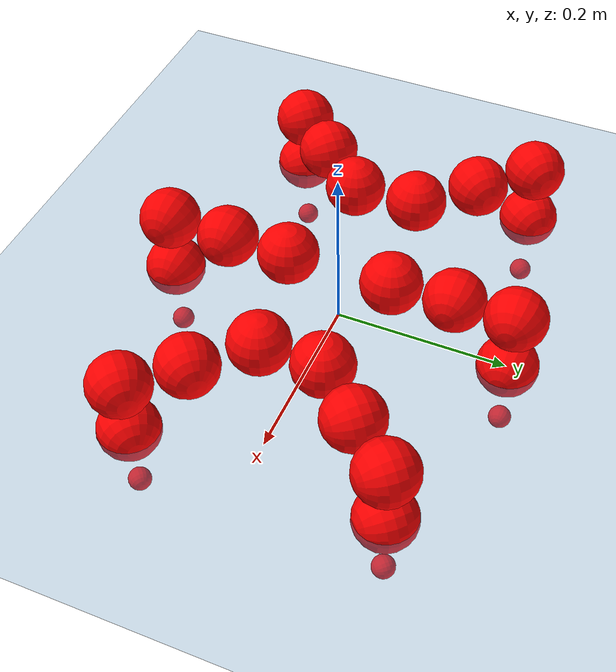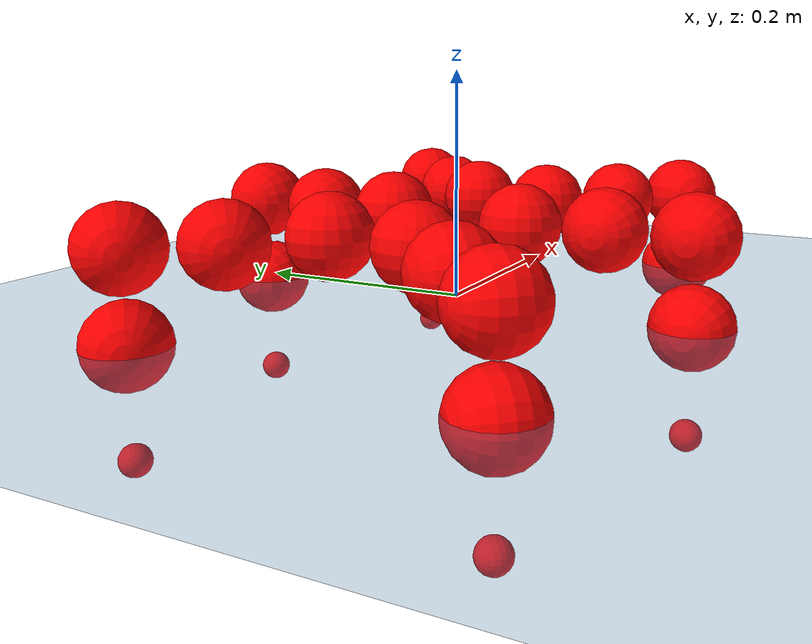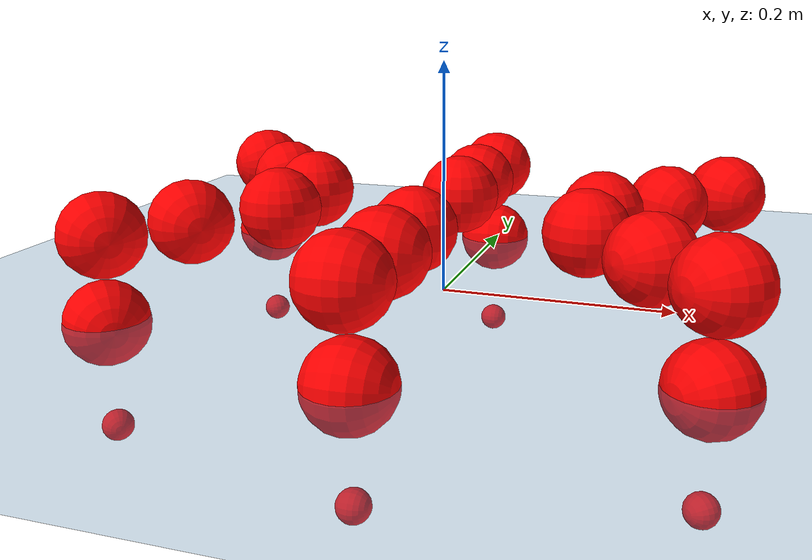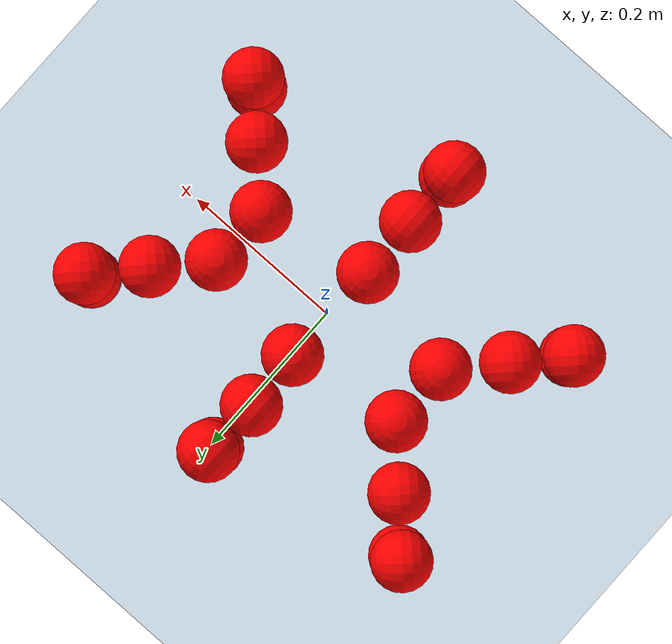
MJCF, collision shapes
<mujoco model="Golem">
  <compiler angle="radian" assetdir="assets" balanceinertia="true" inertiafromgeom="false"/>

  <option timestep="0.005" density="1.2" viscosity="2e-05"/>

  <size nkey="1"/>

  <visual>
    <quality shadowsize="8192"/>
    <map shadowclip="0.5"/>
  </visual>

  <default>
    <default class="/">
      <joint armature="0.01" damping="0.01" frictionloss="0.01"/>
      <geom contype="0" conaffinity="0" group="1" solref="-1000 -80"/>
      <site size="0.01 0.005 0.005" group="5"/>
      <general forcelimited="true" biastype="affine" gainprm="25" biasprm="0 -25 -0.5"/>
      <default class="visual">
        <geom type="mesh" group="2"/>
      </default>
      <default class="collision">
        <geom group="3"/>
      </default>
      <default class="foot">
        <geom size="0.01 0 0" condim="6" group="4" priority="1" solimp="0.015 1 0.01"/>
      </default>
      <default class="reward_collision_sphere">
        <geom group="5" rgba="1 0 0 1"/>
      </default>
    </default>
  </default>

  <asset>
    <texture type="skybox" colorspace="auto" name="//unnamed_texture_0" builtin="gradient" rgb1="0.95 0.95 0.95" rgb2="0.95 0.95 0.95" width="100" height="600"/>
    <texture type="2d" colorspace="auto" name="texplane" builtin="checker" rgb1="0.345 0.575 0.748" rgb2="0.345 0.575 0.748" markrgb="1 1 1" width="512" height="512"/>
    <material name="MatPlane" class="/" texture="texplane" texuniform="true" texrepeat="2 2" specular="0.9"/>
    <mesh name="body" class="/" file="body.stl" scale="0.001 0.001 0.001"/>
    <mesh name="coxa" class="/" file="coxa.stl" scale="0.001 0.001 0.001"/>
    <mesh name="femur" class="/" file="femur.stl" scale="0.001 0.001 0.001"/>
    <mesh name="tibia" class="/" file="tibia.stl" scale="0.001 0.001 0.001"/>
    <mesh name="tarsus" class="/" file="tarsus.stl" scale="0.001 0.001 0.001"/>
  </asset>

  <worldbody>
    <geom name="floor" class="/" size="100 100 0.125" type="plane" group="0" material="MatPlane"/>
    <light name="toplight_shadow" class="/" pos="0 0 5" dir="0.0990148 0.0990148 -0.990148" type="directional" ambient="0.04 0.04 0.04" diffuse="0.55 0.55 0.55" specular="0.12 0.12 0.12"/>
    <light name="toplight_fill" class="/" pos="0 0 5" dir="0.0990148 0.0990148 -0.990148" type="directional" castshadow="false" ambient="0.04 0.04 0.04" diffuse="0.3 0.3 0.3" specular="0.08 0.08 0.08"/>
    <body name="trunk" pos="-0.00270815 0.000436701 -0.00025733" quat="0.999999 0.000656111 0.000759663 0.000733982">
      <inertial pos="0.00149169 0.00190281 0.000107237" quat="0.999946 0.000710652 0.00775544 0.00681891" mass="2.48581" diaginertia="0.0044658 0.00152422 0.016855"/>
      <joint name="//unnamed_joint_0" type="free"/>
      <geom name="//unnamed_geom_1" class="/" pos="0 0 0.0716497" quat="1 0 0 0" type="mesh" rgba="0.9 0.9 0.9 1" mesh="body"/>
      <site name="imu" class="/" pos="0.108874 0.0138852 0.103115" size="0.00888135"/>
      <camera name="track" class="/" pos="0 -1.37347 0" quat="0.707107 0.707107 0 0" mode="trackcom"/>
      <camera name="ego_camera" class="/" pos="0.111559 0 0.111953" quat="-0.5 -0.5 0.5 0.5"/>
      <body name="coxa_RR" pos="-0.153568 -0.0542751 0.0728302" quat="0.382165 0.00099424 0.000774799 -0.924093">
        <inertial pos="0.00240297 0.00135151 0.00172468" quat="0.999947 0.00295407 -0.00956296 -0.00228576" mass="0.148914" diaginertia="0.00482748 0.00158984 0.0181432"/>
        <joint name="coxa_joint_RR" class="/" pos="0 0 0" axis="0.000655874 0.00133037 -0.999999" range="-3.14506 3.09703" armature="0.0098605" damping="0.0189186" frictionloss="0.00891469"/>
        <geom name="//unnamed_geom_2" class="/" type="mesh" rgba="0.2 0.2 0.2 1" mesh="coxa"/>
        <geom name="//unnamed_geom_3" class="reward_collision_sphere" size="0.0355254" pos="-0.0257443 0 0"/>
        <body name="femur_RR" pos="0.0526468 0.00297137 -0.00231296" quat="0.498979 -0.500457 0.500789 0.499773">
          <inertial pos="0.00270189 0.00108537 -0.00076985" quat="0.99991 0.00655073 0.0110635 0.00391744" mass="0.14144" diaginertia="0.00471973 0.0015482 0.0176476"/>
          <joint name="femur_joint_RR" class="/" pos="0 0 0" axis="-0.00392389 -0.000262945 -0.999992" stiffness="0.0108926" range="-3.09602 3.09105" armature="0.00900994" damping="0.0146793" frictionloss="0.00939842"/>
          <geom name="//unnamed_geom_4" class="/" type="mesh" rgba="0.9 0.9 0.9 1" mesh="femur"/>
          <geom name="//unnamed_geom_5" class="reward_collision_sphere" size="0.0355254"/>
          <body name="tibia_RR" pos="0.00175851 -0.0718993 0.00291506" quat="0.000486989 0.999999 -0.000934312 0.000296997">
            <inertial pos="-0.00277016 -0.00119101 -0.000244702" quat="0.99998 0.00271395 -0.00144692 0.0054882" mass="0.144732" diaginertia="0.00474911 0.0015509 0.0183198"/>
            <joint name="tibia_joint_RR" class="/" pos="0 0 0" axis="0.0133193 0.00628632 0.999892" stiffness="0.0107194" range="-3.15945 3.1301" armature="0.00882464" damping="0" frictionloss="0.00909031"/>
            <geom name="//unnamed_geom_6" class="/" type="mesh" rgba="0.2 0.2 0.2 1" mesh="tibia"/>
            <geom name="//unnamed_geom_7" class="reward_collision_sphere" size="0.0355254"/>
            <body name="tarsus_RR" pos="0.0736312 0.00279792 -0.000225848" quat="0.999999 -0.000773902 -0.000498945 -0.000550205">
              <inertial pos="0.0510205 0.000991868 -0.000895731" quat="0.499594 0.501927 0.499555 0.498918" mass="0.144358" diaginertia="0.00486075 0.001587 0.0181169"/>
              <joint name="tarsus_joint_RR" class="/" pos="0 0 0" axis="6.28699e-05 0.00289278 0.999996" range="-3.13635 3.14169" armature="0.008444" damping="0.0373271" frictionloss="0.00764604"/>
              <geom name="//unnamed_geom_8" class="/" type="mesh" rgba="0.9 0.9 0.9 1" mesh="tarsus"/>
              <geom name="foot_1" class="foot" size="0.00921652" pos="0.096112 0 0" quat="0 -0.707107 0 0.707107"/>
              <geom name="//unnamed_geom_10" class="reward_collision_sphere" size="0.0355254"/>
              <geom name="//unnamed_geom_11" class="reward_collision_sphere" size="0.013322" pos="0.0922503 0 0"/>
              <site name="foot_1" class="foot" pos="0.096112 0 0" quat="0 -0.707107 0 0.707107" size="0.00888135"/>
            </body>
          </body>
        </body>
      </body>
      <body name="coxa_RM" pos="-0.00279689 -0.0893676 0.0709062" quat="0.707184 -0.000159575 -0.000214295 -0.70703">
        <inertial pos="-0.00263723 -0.000189985 0.000966093" quat="0.999997 -0.00136918 -0.000339532 -0.00179725" mass="0.144348" diaginertia="0.00471149 0.00161119 0.0182212"/>
        <joint name="coxa_joint_RM" class="/" pos="0 0 0" axis="3.11692e-05 0.000845426 -1" range="-3.08389 3.13745" armature="0.0101317" damping="0.0126259" frictionloss="0.0086507"/>
        <geom name="//unnamed_geom_12" class="/" type="mesh" rgba="0.2 0.2 0.2 1" mesh="coxa"/>
        <geom name="//unnamed_geom_13" class="reward_collision_sphere" size="0.0355254" pos="-0.0257443 0 0"/>
        <body name="femur_RM" pos="0.0486633 0.00198279 0.00137618" quat="0.500173 -0.499226 0.499817 0.500782">
          <inertial pos="-0.00079686 -0.00226965 0.000834422" quat="0.999933 0.00998992 -0.00406727 -0.00413265" mass="0.139092" diaginertia="0.00444563 0.00148734 0.0172569"/>
          <joint name="femur_joint_RM" class="/" pos="0 0 0" axis="0.000403641 -0.000170705 -1" range="-3.18412 3.14332" armature="0.00853516" damping="0.0116759" frictionloss="0.0088855"/>
          <geom name="//unnamed_geom_14" class="/" type="mesh" rgba="0.9 0.9 0.9 1" mesh="femur"/>
          <geom name="//unnamed_geom_15" class="reward_collision_sphere" size="0.0355254"/>
          <body name="tibia_RM" pos="-0.00133421 -0.0744164 -0.000467533" quat="-0.000794117 0.999999 -0.000130018 0.000654078">
            <inertial pos="-0.00268911 -0.000307699 0.000347167" quat="0.999905 -0.0090429 0.00826788 -0.00630914" mass="0.139799" diaginertia="0.00469552 0.00149299 0.0173033"/>
            <joint name="tibia_joint_RM" class="/" pos="0 0 0" axis="0.000424401 -0.000171976 1" range="-3.13958 3.13152" armature="0.00936816" damping="0" frictionloss="0.00900976"/>
            <geom name="//unnamed_geom_16" class="/" type="mesh" rgba="0.2 0.2 0.2 1" mesh="tibia"/>
            <geom name="//unnamed_geom_17" class="reward_collision_sphere" size="0.0355254"/>
            <body name="tarsus_RM" pos="0.0749868 9.42565e-05 -0.00233715" quat="0.999999 -0.000437764 0.00118745 -0.000271069">
              <inertial pos="0.0509173 -0.000759038 0.000294842" quat="0.498766 0.501828 0.5008 0.4986" mass="0.138367" diaginertia="0.00471749 0.00150734 0.0182873"/>
              <joint name="tarsus_joint_RM" class="/" pos="0 0 0" axis="-0.010173 0.0100553 0.999898" range="-3.19256 3.18215" armature="0.00786256" damping="0.00754527" frictionloss="0.00792315"/>
              <geom name="//unnamed_geom_18" class="/" type="mesh" rgba="0.9 0.9 0.9 1" mesh="tarsus"/>
              <geom name="foot_2" class="foot" size="0.00887754" pos="0.096112 0 0" quat="0 -0.707107 0 0.707107"/>
              <geom name="//unnamed_geom_20" class="reward_collision_sphere" size="0.0355254"/>
              <geom name="//unnamed_geom_21" class="reward_collision_sphere" size="0.013322" pos="0.0922503 0 0"/>
              <site name="foot_2" class="foot" pos="0.096112 0 0" quat="0 -0.707107 0 0.707107" size="0.00888135"/>
            </body>
          </body>
        </body>
      </body>
      <body name="coxa_RF" pos="0.150192 -0.0540697 0.0720119" quat="0.92375 1.7808e-05 -0.00125969 -0.382993">
        <inertial pos="0.00268298 0.00258028 0.000116025" quat="0.999999 0.000359325 0.00090284 0.000442176" mass="0.138063" diaginertia="0.00468011 0.00147867 0.0176671"/>
        <joint name="coxa_joint_RF" class="/" pos="0 0 0" axis="0.0102487 0.00497011 -0.999935" range="-3.10603 3.0881" armature="0.00845795" damping="0.0310793" frictionloss="0.00841269"/>
        <geom name="//unnamed_geom_22" class="/" type="mesh" rgba="0.2 0.2 0.2 1" mesh="coxa"/>
        <geom name="//unnamed_geom_23" class="reward_collision_sphere" size="0.0355254" pos="-0.0257443 0 0"/>
        <body name="femur_RF" pos="0.0527124 0.000156923 -0.00143133" quat="0.499941 -0.500828 0.499048 0.500181">
          <inertial pos="0.000716913 -0.00240826 0.00242852" quat="0.999904 -0.0134454 0.00134151 -0.00293148" mass="0.140105" diaginertia="0.00453307 0.00148038 0.0165175"/>
          <joint name="femur_joint_RF" class="/" pos="0 0 0" axis="0.00526334 0.00959144 -0.99994" stiffness="0.000461112" range="-3.12301 3.09496" armature="0.00994555" damping="0.00459515" frictionloss="0.0101065"/>
          <geom name="//unnamed_geom_24" class="/" type="mesh" rgba="0.9 0.9 0.9 1" mesh="femur"/>
          <geom name="//unnamed_geom_25" class="reward_collision_sphere" size="0.0355254"/>
          <body name="tibia_RF" pos="-0.00126813 -0.071954 -0.000930478" quat="-0.000636342 1 0.000552443 0.000224414">
            <inertial pos="-0.000452702 0.000148214 -0.000710663" quat="0.999904 0.00645618 0.0119232 -0.00298509" mass="0.1367" diaginertia="0.00443373 0.00148384 0.0174146"/>
            <joint name="tibia_joint_RF" class="/" pos="0 0 0" axis="-0.00356708 -0.00105854 0.999993" range="-3.14521 3.19007" armature="0.00845381" damping="0.000347666" frictionloss="0.00913912"/>
            <geom name="//unnamed_geom_26" class="/" type="mesh" rgba="0.2 0.2 0.2 1" mesh="tibia"/>
            <geom name="//unnamed_geom_27" class="reward_collision_sphere" size="0.0355254"/>
            <body name="tarsus_RF" pos="0.0742073 -0.00111972 0.00110487" quat="0.999999 0.000800853 -0.000457819 0.000592395">
              <inertial pos="0.0518769 1.60363e-05 -0.000316223" quat="0.507586 0.504645 0.493972 0.493642" mass="0.135423" diaginertia="0.00453727 0.00148966 0.0164841"/>
              <joint name="tarsus_joint_RF" class="/" pos="0 0 0" axis="-0.000227088 -0.00146758 0.999999" range="-3.14647 3.14874" armature="0.00874129" damping="0.00739359" frictionloss="0.00993309"/>
              <geom name="//unnamed_geom_28" class="/" type="mesh" rgba="0.9 0.9 0.9 1" mesh="tarsus"/>
              <geom name="foot_3" class="foot" size="0.00970117" pos="0.096112 0 0" quat="0 -0.707107 0 0.707107"/>
              <geom name="//unnamed_geom_30" class="reward_collision_sphere" size="0.0355254"/>
              <geom name="//unnamed_geom_31" class="reward_collision_sphere" size="0.013322" pos="0.0922503 0 0"/>
              <site name="foot_3" class="foot" pos="0.096112 0 0" quat="0 -0.707107 0 0.707107" size="0.00888135"/>
            </body>
          </body>
        </body>
      </body>
      <body name="coxa_LR" pos="-0.154494 0.0584257 0.0743371" quat="0.383206 -0.00107222 -0.000289061 0.923662">
        <inertial pos="0.000276182 -0.000453499 0.000726225" quat="0.999998 -0.000151856 0.000570531 0.00196286" mass="0.137908" diaginertia="0.00451131 0.00151293 0.0171698"/>
        <joint name="coxa_joint_LR" class="/" pos="0 0 0" axis="9.9115e-05 -0.0157498 -0.999876" range="-3.08372 3.14083" armature="0.00816418" damping="0.0163729" frictionloss="0.00912274"/>
        <geom name="//unnamed_geom_32" class="/" type="mesh" rgba="0.2 0.2 0.2 1" mesh="coxa"/>
        <geom name="//unnamed_geom_33" class="reward_collision_sphere" size="0.0355254" pos="-0.0257443 0 0"/>
        <body name="femur_LR" pos="0.0544769 -0.00193669 -0.00192554" quat="0.499666 -0.500378 0.500226 0.499729">
          <inertial pos="1.56474e-05 0.000945858 0.00152505" quat="0.999983 -0.00479484 0.00301325 0.00142675" mass="0.141421" diaginertia="0.00476286 0.00148855 0.0181099"/>
          <joint name="femur_joint_LR" class="/" pos="0 0 0" axis="0.00235188 -0.00498074 0.999985" range="-3.19361 3.19286" armature="0.00906615" damping="0" frictionloss="0.00882323"/>
          <geom name="//unnamed_geom_34" class="/" type="mesh" rgba="0.9 0.9 0.9 1" mesh="femur"/>
          <geom name="//unnamed_geom_35" class="reward_collision_sphere" size="0.0355254"/>
          <body name="tibia_LR" pos="-0.00133605 -0.0751139 -0.00176552" quat="-1.75378e-05 1 -6.26348e-05 -1.20381e-05">
            <inertial pos="-0.00222444 -0.0001469 -0.0024417" quat="0.999986 9.97249e-05 -0.00210088 0.00490932" mass="0.140109" diaginertia="0.00474796 0.00160103 0.0172562"/>
            <joint name="tibia_joint_LR" class="/" pos="0 0 0" axis="-0.00259752 -0.001795 -0.999995" range="-3.08864 3.19424" armature="0.00801638" damping="0.00435912" frictionloss="0.00853867"/>
            <geom name="//unnamed_geom_36" class="/" type="mesh" rgba="0.2 0.2 0.2 1" mesh="tibia"/>
            <geom name="//unnamed_geom_37" class="reward_collision_sphere" size="0.0355254"/>
            <body name="tarsus_LR" pos="0.0744176 -0.000138046 0.000385574" quat="1 0.000121257 0.000125476 -0.00021702">
              <inertial pos="0.0513173 0.000822576 0.000138637" quat="0.499856 0.499649 0.499502 0.500991" mass="0.141933" diaginertia="0.00468081 0.00162925 0.0181922"/>
              <joint name="tarsus_joint_LR" class="/" pos="0 0 0" axis="-0.0127288 -0.00270601 -0.999915" stiffness="0.0071371" range="-3.11999 3.08561" armature="0.00922806" damping="0.0272824" frictionloss="0.0101074"/>
              <geom name="//unnamed_geom_38" class="/" type="mesh" rgba="0.9 0.9 0.9 1" mesh="tarsus"/>
              <geom name="foot_4" class="foot" size="0.00902279" pos="0.096112 0 0" quat="0.707107 0 -0.707107 0"/>
              <geom name="//unnamed_geom_40" class="reward_collision_sphere" size="0.0355254"/>
              <geom name="//unnamed_geom_41" class="reward_collision_sphere" size="0.013322" pos="0.0922503 0 0"/>
              <site name="foot_4" class="foot" pos="0.096112 0 0" quat="0.707107 0 -0.707107 0" size="0.00888135"/>
            </body>
          </body>
        </body>
      </body>
      <body name="coxa_LM" pos="-0.000738753 0.0871228 0.0738492" quat="0.707353 -0.00035028 0.000642444 0.70686">
        <inertial pos="0.00286871 0.00225954 0.000785774" quat="1 0.000122857 -0.000105498 -5.05652e-05" mass="0.140646" diaginertia="0.00468017 0.00153325 0.0177318"/>
        <joint name="coxa_joint_LM" class="/" pos="0 0 0" axis="0.00314229 0.000809844 -0.999995" range="-3.09167 3.08978" armature="0.0101143" damping="0.00541146" frictionloss="0.00989855"/>
        <geom name="//unnamed_geom_42" class="/" type="mesh" rgba="0.2 0.2 0.2 1" mesh="coxa"/>
        <geom name="//unnamed_geom_43" class="reward_collision_sphere" size="0.0355254" pos="-0.0257443 0 0"/>
        <body name="femur_LM" pos="0.0465988 0.00265947 -0.000568713" quat="0.499816 -0.499577 0.499518 0.501088">
          <inertial pos="-0.0025387 0.0020446 0.000898359" quat="0.999904 0.00670083 0.0114605 -0.00395508" mass="0.13961" diaginertia="0.00480107 0.00147362 0.017449"/>
          <joint name="femur_joint_LM" class="/" pos="0 0 0" axis="0.000508213 -0.00228355 0.999997" stiffness="0.00949224" range="-3.11772 3.13579" armature="0.0078073" damping="0" frictionloss="0.00859214"/>
          <geom name="//unnamed_geom_44" class="/" type="mesh" rgba="0.9 0.9 0.9 1" mesh="femur"/>
          <geom name="//unnamed_geom_45" class="reward_collision_sphere" size="0.0355254"/>
          <body name="tibia_LM" pos="-0.00161852 -0.0698482 -0.00244857" quat="-0.000170327 1 0.000158025 6.77279e-06">
            <inertial pos="0.000349573 0.00114528 0.00194133" quat="0.999995 0.00104304 -0.000562428 -0.00276941" mass="0.136564" diaginertia="0.00447775 0.0015249 0.0174356"/>
            <joint name="tibia_joint_LM" class="/" pos="0 0 0" axis="0.00425963 -0.0123065 -0.999915" range="-3.15355 3.19313" armature="0.00914836" damping="0" frictionloss="0.00782501"/>
            <geom name="//unnamed_geom_46" class="/" type="mesh" rgba="0.2 0.2 0.2 1" mesh="tibia"/>
            <geom name="//unnamed_geom_47" class="reward_collision_sphere" size="0.0355254"/>
            <body name="tarsus_LM" pos="0.0774499 -0.0019275 9.04869e-05" quat="1 2.87468e-05 1.99882e-05 1.81751e-06">
              <inertial pos="0.0523519 0.000157462 -7.79321e-05" quat="0.502974 0.496814 0.506617 0.49349" mass="0.148935" diaginertia="0.00491341 0.00155954 0.0175579"/>
              <joint name="tarsus_joint_LM" class="/" pos="0 0 0" axis="0.00362322 -0.00592582 -0.999976" stiffness="0.0125306" range="-3.14197 3.08661" armature="0.00884363" damping="0.0193069" frictionloss="0.00893594"/>
              <geom name="//unnamed_geom_48" class="/" type="mesh" rgba="0.9 0.9 0.9 1" mesh="tarsus"/>
              <geom name="foot_5" class="foot" size="0.00925707" pos="0.096112 0 0" quat="0.707107 0 -0.707107 0"/>
              <geom name="//unnamed_geom_50" class="reward_collision_sphere" size="0.0355254"/>
              <geom name="//unnamed_geom_51" class="reward_collision_sphere" size="0.013322" pos="0.0922503 0 0"/>
              <site name="foot_5" class="foot" pos="0.096112 0 0" quat="0.707107 0 -0.707107 0" size="0.00888135"/>
            </body>
          </body>
        </body>
      </body>
      <body name="coxa_LF" pos="0.151798 0.0561767 0.0718845" quat="0.923896 7.46439e-05 -9.07877e-05 0.382644">
        <inertial pos="-3.63993e-05 -0.000233959 7.12772e-05" quat="1 0.000254857 -5.20814e-05 -0.000509496" mass="0.137137" diaginertia="0.00455313 0.00154735 0.0177971"/>
        <joint name="coxa_joint_LF" class="/" pos="0 0 0" axis="-0.00806796 -0.00503862 -0.999955" range="-3.15699 3.10796" armature="0.00903658" damping="0.0135309" frictionloss="0.00881432"/>
        <geom name="//unnamed_geom_52" class="/" type="mesh" rgba="0.2 0.2 0.2 1" mesh="coxa"/>
        <geom name="//unnamed_geom_53" class="reward_collision_sphere" size="0.0355254" pos="-0.0257443 0 0"/>
        <body name="femur_LF" pos="0.0491916 0.0024744 -0.00229466" quat="0.49999 -0.500001 0.499873 0.500135">
          <inertial pos="-0.0028132 0.00129882 -1.2521e-05" quat="0.999999 0.000309346 0.000361875 0.000890069" mass="0.140182" diaginertia="0.00455955 0.00142985 0.0167843"/>
          <joint name="femur_joint_LF" class="/" pos="0 0 0" axis="0.0111843 0.0101846 0.999886" stiffness="0.00575346" range="-3.14095 3.08585" armature="0.00762073" damping="0" frictionloss="0.00858364"/>
          <geom name="//unnamed_geom_54" class="/" type="mesh" rgba="0.9 0.9 0.9 1" mesh="femur"/>
          <geom name="//unnamed_geom_55" class="reward_collision_sphere" size="0.0355254"/>
          <body name="tibia_LF" pos="-0.00204688 -0.0732403 0.00336008" quat="-2.89228e-05 1 9.01211e-05 -3.017e-05">
            <inertial pos="0.000368125 0.00200665 -0.00104035" quat="0.999913 0.0111244 0.00619802 0.00341193" mass="0.137525" diaginertia="0.00462276 0.00155435 0.0176711"/>
            <joint name="tibia_joint_LF" class="/" pos="0 0 0" axis="-0.000745484 -6.90898e-05 -1" stiffness="0.00230693" range="-3.13037 3.09805" armature="0.00794753" damping="0" frictionloss="0.00900059"/>
            <geom name="//unnamed_geom_56" class="/" type="mesh" rgba="0.2 0.2 0.2 1" mesh="tibia"/>
            <geom name="//unnamed_geom_57" class="reward_collision_sphere" size="0.0355254"/>
            <body name="tarsus_LF" pos="0.0773735 0.00105779 -0.000636555" quat="0.999999 -0.000447206 -0.000775045 -0.000584158">
              <inertial pos="0.0544615 -0.0024546 -0.000847534" quat="0.499837 0.499518 0.499675 0.500969" mass="0.13453" diaginertia="0.00449196 0.00147306 0.0171821"/>
              <joint name="tarsus_joint_LF" class="/" pos="0 0 0" axis="-0.0129921 -0.00395512 -0.999908" range="-3.08448 3.11807" armature="0.00858048" damping="0.0221247" frictionloss="0.00871033"/>
              <geom name="//unnamed_geom_58" class="/" type="mesh" rgba="0.9 0.9 0.9 1" mesh="tarsus"/>
              <geom name="foot_6" class="foot" size="0.00787459" pos="0.096112 0 0" quat="0.707107 0 -0.707107 0"/>
              <geom name="//unnamed_geom_60" class="reward_collision_sphere" size="0.0355254"/>
              <geom name="//unnamed_geom_61" class="reward_collision_sphere" size="0.013322" pos="0.0922503 0 0"/>
              <site name="foot_6" class="foot" pos="0.096112 0 0" quat="0.707107 0 -0.707107 0" size="0.00888135"/>
            </body>
          </body>
        </body>
      </body>
    </body>
  </worldbody>

  <contact>
    <pair class="/" geom1="floor" geom2="foot_1" name="//unnamed_contact_0"/>
    <pair class="/" geom1="floor" geom2="foot_2" name="//unnamed_contact_1"/>
    <pair class="/" geom1="floor" geom2="foot_3" name="//unnamed_contact_2"/>
    <pair class="/" geom1="floor" geom2="foot_4" name="//unnamed_contact_3"/>
    <pair class="/" geom1="floor" geom2="foot_5" name="//unnamed_contact_4"/>
    <pair class="/" geom1="floor" geom2="foot_6" name="//unnamed_contact_5"/>
  </contact>

  <actuator>
    <general name="coxa_joint_RR" class="/" joint="coxa_joint_RR" forcerange="-6.26734 6.26734" gainprm="22.1755" biasprm="0 -22.1755 -0.431933"/>
    <general name="femur_joint_RR" class="/" joint="femur_joint_RR" forcerange="-6.52243 6.52243" gainprm="22.1755" biasprm="0 -22.1755 -0.431933"/>
    <general name="tibia_joint_RR" class="/" joint="tibia_joint_RR" forcerange="-6.47199 6.47199" gainprm="22.1755" biasprm="0 -22.1755 -0.431933"/>
    <general name="tarsus_joint_RR" class="/" joint="tarsus_joint_RR" forcerange="-6.52424 6.52424" gainprm="22.1755" biasprm="0 -22.1755 -0.431933"/>
    <general name="coxa_joint_RM" class="/" joint="coxa_joint_RM" forcerange="-6.44478 6.44478" gainprm="22.1755" biasprm="0 -22.1755 -0.431933"/>
    <general name="femur_joint_RM" class="/" joint="femur_joint_RM" forcerange="-5.80958 5.80958" gainprm="22.1755" biasprm="0 -22.1755 -0.431933"/>
    <general name="tibia_joint_RM" class="/" joint="tibia_joint_RM" forcerange="-6.51548 6.51548" gainprm="22.1755" biasprm="0 -22.1755 -0.431933"/>
    <general name="tarsus_joint_RM" class="/" joint="tarsus_joint_RM" forcerange="-6.64282 6.64282" gainprm="22.1755" biasprm="0 -22.1755 -0.431933"/>
    <general name="coxa_joint_RF" class="/" joint="coxa_joint_RF" forcerange="-5.80652 5.80652" gainprm="22.1755" biasprm="0 -22.1755 -0.431933"/>
    <general name="femur_joint_RF" class="/" joint="femur_joint_RF" forcerange="-5.82018 5.82018" gainprm="22.1755" biasprm="0 -22.1755 -0.431933"/>
    <general name="tibia_joint_RF" class="/" joint="tibia_joint_RF" forcerange="-7.13315 7.13315" gainprm="22.1755" biasprm="0 -22.1755 -0.431933"/>
    <general name="tarsus_joint_RF" class="/" joint="tarsus_joint_RF" forcerange="-6.81114 6.81114" gainprm="22.1755" biasprm="0 -22.1755 -0.431933"/>
    <general name="coxa_joint_LR" class="/" joint="coxa_joint_LR" forcerange="-6.72777 6.72777" gainprm="22.1755" biasprm="0 -22.1755 -0.431933"/>
    <general name="femur_joint_LR" class="/" joint="femur_joint_LR" forcerange="-5.99674 5.99674" gainprm="22.1755" biasprm="0 -22.1755 -0.431933"/>
    <general name="tibia_joint_LR" class="/" joint="tibia_joint_LR" forcerange="-5.86794 5.86794" gainprm="22.1755" biasprm="0 -22.1755 -0.431933"/>
    <general name="tarsus_joint_LR" class="/" joint="tarsus_joint_LR" forcerange="-7.05045 7.05045" gainprm="22.1755" biasprm="0 -22.1755 -0.431933"/>
    <general name="coxa_joint_LM" class="/" joint="coxa_joint_LM" forcerange="-6.92923 6.92923" gainprm="22.1755" biasprm="0 -22.1755 -0.431933"/>
    <general name="femur_joint_LM" class="/" joint="femur_joint_LM" forcerange="-6.56029 6.56029" gainprm="22.1755" biasprm="0 -22.1755 -0.431933"/>
    <general name="tibia_joint_LM" class="/" joint="tibia_joint_LM" forcerange="-6.55234 6.55234" gainprm="22.1755" biasprm="0 -22.1755 -0.431933"/>
    <general name="tarsus_joint_LM" class="/" joint="tarsus_joint_LM" forcerange="-6.21681 6.21681" gainprm="22.1755" biasprm="0 -22.1755 -0.431933"/>
    <general name="coxa_joint_LF" class="/" joint="coxa_joint_LF" forcerange="-6.56196 6.56196" gainprm="22.1755" biasprm="0 -22.1755 -0.431933"/>
    <general name="femur_joint_LF" class="/" joint="femur_joint_LF" forcerange="-6.46822 6.46822" gainprm="22.1755" biasprm="0 -22.1755 -0.431933"/>
    <general name="tibia_joint_LF" class="/" joint="tibia_joint_LF" forcerange="-6.63563 6.63563" gainprm="22.1755" biasprm="0 -22.1755 -0.431933"/>
    <general name="tarsus_joint_LF" class="/" joint="tarsus_joint_LF" forcerange="-6.69832 6.69832" gainprm="22.1755" biasprm="0 -22.1755 -0.431933"/>
  </actuator>

  <sensor>
    <gyro site="imu" name="imu_angular_velocity"/>
    <velocimeter site="imu" name="imu_linear_velocity"/>
    <framelinvel objtype="site" objname="foot_1" name="foot_1_global_linear_velocity"/>
    <framelinvel objtype="site" objname="foot_2" name="foot_2_global_linear_velocity"/>
    <framelinvel objtype="site" objname="foot_3" name="foot_3_global_linear_velocity"/>
    <framelinvel objtype="site" objname="foot_4" name="foot_4_global_linear_velocity"/>
    <framelinvel objtype="site" objname="foot_5" name="foot_5_global_linear_velocity"/>
    <framelinvel objtype="site" objname="foot_6" name="foot_6_global_linear_velocity"/>
  </sensor>

  <keyframe>
    <key name="home" qpos="0 0 0.1457 1 0 0 0 0 0 0 0 0 0 0 0 0 0 0 0 0 0 0 0 0 0 0 0 0 0 0 0"/>
  </keyframe>
</mujoco>
